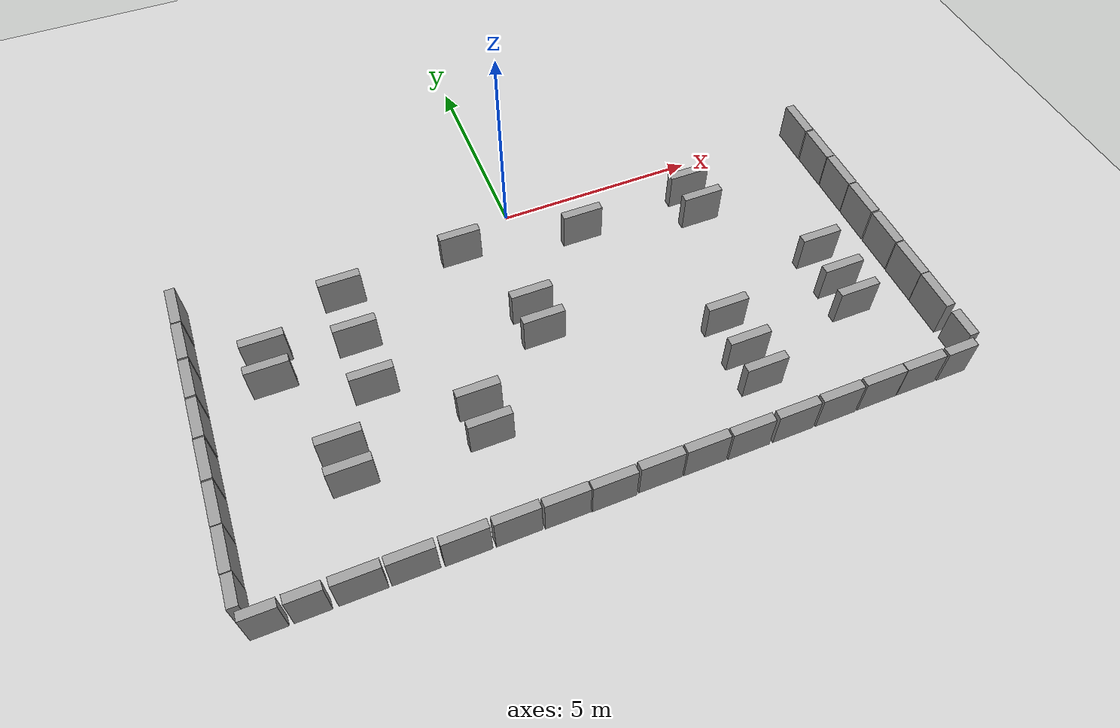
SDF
<sdf version="1.6">
 <world name="default">
  <model name="ground_plane">
   <static>1</static>
   <static>1</static>
   <link name="link">
    <collision name="collision">
     <geometry><plane><normal>0 0 1</normal><size>100 100</size></plane></geometry>
     <surface><friction><ode><mu>100</mu><mu2>50</mu2></ode></friction></surface>
    </collision>
    <visual name="visual">
     <cast_shadows>0</cast_shadows>
     <geometry><plane><normal>0 0 1</normal><size>100 100</size></plane></geometry>
     <material>
      <script><uri>file://media/materials/scripts/gazebo.material</uri><name>Gazebo/Grey</name></script>
     </material>
    </visual>
   </link>
  </model>
  <model name="unit_box_0_clone_7">
   <pose>8.11276 -0.449321 0.5 1e-06 1e-06 0.000231</pose>
   <link name="link">
    <inertial>
     <mass>1</mass>
     <inertia>
      <ixx>0.166667</ixx>
      <ixy>0</ixy>
      <ixz>0</ixz>
      <iyy>0.166667</iyy>
      <iyz>0</iyz>
      <izz>0.166667</izz>
     </inertia>
    </inertial>
    <collision name="collision"><geometry><box><size>0.230819 1 1</size></box></geometry></collision>
    <visual name="visual">
     <geometry><box><size>0.230819 1 1</size></box></geometry>
     <material>
      <script><name>Gazebo/Grey</name><uri>file://media/materials/scripts/gazebo.material</uri></script>
     </material>
    </visual>
   </link>
  </model>
  <model name="unit_box_0_clone_8">
   <pose>8.11912 -1.4863 0.5 1e-06 1e-06 0.000231</pose>
   <link name="link">
    <inertial>
     <mass>1</mass>
     <inertia>
      <ixx>0.166667</ixx>
      <ixy>0</ixy>
      <ixz>0</ixz>
      <iyy>0.166667</iyy>
      <iyz>0</iyz>
      <izz>0.166667</izz>
     </inertia>
    </inertial>
    <collision name="collision"><geometry><box><size>0.230819 1 1</size></box></geometry></collision>
    <visual name="visual">
     <geometry><box><size>0.230819 1 1</size></box></geometry>
     <material>
      <script><name>Gazebo/Grey</name><uri>file://media/materials/scripts/gazebo.material</uri></script>
     </material>
    </visual>
   </link>
  </model>
  <model name="unit_box_0_clone_9">
   <pose>8.12548 -2.5042 0.5 1e-06 1e-06 0.000231</pose>
   <link name="link">
    <inertial>
     <mass>1</mass>
     <inertia>
      <ixx>0.166667</ixx>
      <ixy>0</ixy>
      <ixz>0</ixz>
      <iyy>0.166667</iyy>
      <iyz>0</iyz>
      <izz>0.166667</izz>
     </inertia>
    </inertial>
    <collision name="collision"><geometry><box><size>0.230819 1 1</size></box></geometry></collision>
    <visual name="visual">
     <geometry><box><size>0.230819 1 1</size></box></geometry>
     <material>
      <script><name>Gazebo/Grey</name><uri>file://media/materials/scripts/gazebo.material</uri></script>
     </material>
    </visual>
   </link>
  </model>
  <model name="unit_box_0_clone_10">
   <pose>8.12331 -3.52223 0.5 1e-06 1e-06 0.000231</pose>
   <link name="link">
    <inertial>
     <mass>1</mass>
     <inertia>
      <ixx>0.166667</ixx>
      <ixy>0</ixy>
      <ixz>0</ixz>
      <iyy>0.166667</iyy>
      <iyz>0</iyz>
      <izz>0.166667</izz>
     </inertia>
    </inertial>
    <collision name="collision"><geometry><box><size>0.230819 1 1</size></box></geometry></collision>
    <visual name="visual">
     <geometry><box><size>0.230819 1 1</size></box></geometry>
     <material>
      <script><name>Gazebo/Grey</name><uri>file://media/materials/scripts/gazebo.material</uri></script>
     </material>
    </visual>
   </link>
  </model>
  <model name="unit_box_0_clone_11">
   <pose>8.1233 -4.56316 0.5 1e-06 1e-06 0.000231</pose>
   <link name="link">
    <inertial>
     <mass>1</mass>
     <inertia>
      <ixx>0.166667</ixx>
      <ixy>0</ixy>
      <ixz>0</ixz>
      <iyy>0.166667</iyy>
      <iyz>0</iyz>
      <izz>0.166667</izz>
     </inertia>
    </inertial>
    <collision name="collision"><geometry><box><size>0.230819 1 1</size></box></geometry></collision>
    <visual name="visual">
     <geometry><box><size>0.230819 1 1</size></box></geometry>
     <material>
      <script><name>Gazebo/Grey</name><uri>file://media/materials/scripts/gazebo.material</uri></script>
     </material>
    </visual>
   </link>
  </model>
  <model name="unit_box_0_clone_12">
   <pose>8.11815 -5.59377 0.5 1e-06 1e-06 0.000231</pose>
   <link name="link">
    <inertial>
     <mass>1</mass>
     <inertia>
      <ixx>0.166667</ixx>
      <ixy>0</ixy>
      <ixz>0</ixz>
      <iyy>0.166667</iyy>
      <iyz>0</iyz>
      <izz>0.166667</izz>
     </inertia>
    </inertial>
    <collision name="collision"><geometry><box><size>0.230819 1 1</size></box></geometry></collision>
    <visual name="visual">
     <geometry><box><size>0.230819 1 1</size></box></geometry>
     <material>
      <script><name>Gazebo/Grey</name><uri>file://media/materials/scripts/gazebo.material</uri></script>
     </material>
    </visual>
   </link>
  </model>
  <model name="unit_box_0_clone_13">
   <pose>8.11333 -6.60776 0.5 1e-06 1e-06 -0.005436</pose>
   <link name="link">
    <inertial>
     <mass>1</mass>
     <inertia>
      <ixx>0.166667</ixx>
      <ixy>0</ixy>
      <ixz>0</ixz>
      <iyy>0.166667</iyy>
      <iyz>0</iyz>
      <izz>0.166667</izz>
     </inertia>
    </inertial>
    <collision name="collision"><geometry><box><size>0.230819 1 1</size></box></geometry></collision>
    <visual name="visual">
     <geometry><box><size>0.230819 1 1</size></box></geometry>
     <material>
      <script><name>Gazebo/Grey</name><uri>file://media/materials/scripts/gazebo.material</uri></script>
     </material>
    </visual>
   </link>
  </model>
  <model name="unit_box_clone_15_clone_0">
   <pose>6.71207 -8.13093 0.499999 1e-06 -2e-06 0.000156</pose>
   <link name="link">
    <inertial>
     <mass>1</mass>
     <inertia>
      <ixx>0.166667</ixx>
      <ixy>0</ixy>
      <ixz>0</ixz>
      <iyy>0.166667</iyy>
      <iyz>0</iyz>
      <izz>0.166667</izz>
     </inertia>
    </inertial>
    <collision name="collision"><geometry><box><size>1 0.210541 1</size></box></geometry></collision>
    <visual name="visual">
     <geometry><box><size>1 0.210541 1</size></box></geometry>
     <material>
      <script><name>Gazebo/Grey</name><uri>file://media/materials/scripts/gazebo.material</uri></script>
     </material>
    </visual>
   </link>
  </model>
  <model name="unit_box_clone_15_clone_1">
   <pose>5.69715 -8.13092 0.499999 1e-06 -2e-06 0.000156</pose>
   <link name="link">
    <inertial>
     <mass>1</mass>
     <inertia>
      <ixx>0.166667</ixx>
      <ixy>0</ixy>
      <ixz>0</ixz>
      <iyy>0.166667</iyy>
      <iyz>0</iyz>
      <izz>0.166667</izz>
     </inertia>
    </inertial>
    <collision name="collision"><geometry><box><size>1 0.210541 1</size></box></geometry></collision>
    <visual name="visual">
     <geometry><box><size>1 0.210541 1</size></box></geometry>
     <material>
      <script><name>Gazebo/Grey</name><uri>file://media/materials/scripts/gazebo.material</uri></script>
     </material>
    </visual>
   </link>
  </model>
  <model name="unit_box_clone_15_clone_2">
   <pose>4.63881 -8.1371 0.499999 1e-06 -2e-06 0.000156</pose>
   <link name="link">
    <inertial>
     <mass>1</mass>
     <inertia>
      <ixx>0.166667</ixx>
      <ixy>0</ixy>
      <ixz>0</ixz>
      <iyy>0.166667</iyy>
      <iyz>0</iyz>
      <izz>0.166667</izz>
     </inertia>
    </inertial>
    <collision name="collision"><geometry><box><size>1 0.210541 1</size></box></geometry></collision>
    <visual name="visual">
     <geometry><box><size>1 0.210541 1</size></box></geometry>
     <material>
      <script><name>Gazebo/Grey</name><uri>file://media/materials/scripts/gazebo.material</uri></script>
     </material>
    </visual>
   </link>
  </model>
  <model name="unit_box_clone_15_clone_3">
   <pose>3.57975 -8.1371 0.499999 1e-06 -2e-06 0.000156</pose>
   <link name="link">
    <inertial>
     <mass>1</mass>
     <inertia>
      <ixx>0.166667</ixx>
      <ixy>0</ixy>
      <ixz>0</ixz>
      <iyy>0.166667</iyy>
      <iyz>0</iyz>
      <izz>0.166667</izz>
     </inertia>
    </inertial>
    <collision name="collision"><geometry><box><size>1 0.210541 1</size></box></geometry></collision>
    <visual name="visual">
     <geometry><box><size>1 0.210541 1</size></box></geometry>
     <material>
      <script><name>Gazebo/Grey</name><uri>file://media/materials/scripts/gazebo.material</uri></script>
     </material>
    </visual>
   </link>
  </model>
  <model name="unit_box_clone_15_clone_4">
   <pose>2.49815 -8.13709 0.499999 1e-06 -2e-06 0.000156</pose>
   <link name="link">
    <inertial>
     <mass>1</mass>
     <inertia>
      <ixx>0.166667</ixx>
      <ixy>0</ixy>
      <ixz>0</ixz>
      <iyy>0.166667</iyy>
      <iyz>0</iyz>
      <izz>0.166667</izz>
     </inertia>
    </inertial>
    <collision name="collision"><geometry><box><size>1 0.210541 1</size></box></geometry></collision>
    <visual name="visual">
     <geometry><box><size>1 0.210541 1</size></box></geometry>
     <material>
      <script><name>Gazebo/Grey</name><uri>file://media/materials/scripts/gazebo.material</uri></script>
     </material>
    </visual>
   </link>
  </model>
  <model name="unit_box_clone_15_clone_5">
   <pose>1.46162 -8.12582 0.499999 1e-06 -2e-06 0.000156</pose>
   <link name="link">
    <inertial>
     <mass>1</mass>
     <inertia>
      <ixx>0.166667</ixx>
      <ixy>0</ixy>
      <ixz>0</ixz>
      <iyy>0.166667</iyy>
      <iyz>0</iyz>
      <izz>0.166667</izz>
     </inertia>
    </inertial>
    <collision name="collision"><geometry><box><size>1 0.210541 1</size></box></geometry></collision>
    <visual name="visual">
     <geometry><box><size>1 0.210541 1</size></box></geometry>
     <material>
      <script><name>Gazebo/Grey</name><uri>file://media/materials/scripts/gazebo.material</uri></script>
     </material>
    </visual>
   </link>
  </model>
  <model name="unit_box_clone_15_clone_6">
   <pose>0.425087 -8.12581 0.499999 1e-06 -2e-06 0.000156</pose>
   <link name="link">
    <inertial>
     <mass>1</mass>
     <inertia>
      <ixx>0.166667</ixx>
      <ixy>0</ixy>
      <ixz>0</ixz>
      <iyy>0.166667</iyy>
      <iyz>0</iyz>
      <izz>0.166667</izz>
     </inertia>
    </inertial>
    <collision name="collision"><geometry><box><size>1 0.210541 1</size></box></geometry></collision>
    <visual name="visual">
     <geometry><box><size>1 0.210541 1</size></box></geometry>
     <material>
      <script><name>Gazebo/Grey</name><uri>file://media/materials/scripts/gazebo.material</uri></script>
     </material>
    </visual>
   </link>
  </model>
  <model name="unit_box_clone_15_clone_7">
   <pose>-0.633975 -8.14836 0.499999 1e-06 -2e-06 0.000156</pose>
   <link name="link">
    <inertial>
     <mass>1</mass>
     <inertia>
      <ixx>0.166667</ixx>
      <ixy>0</ixy>
      <ixz>0</ixz>
      <iyy>0.166667</iyy>
      <iyz>0</iyz>
      <izz>0.166667</izz>
     </inertia>
    </inertial>
    <collision name="collision"><geometry><box><size>1 0.210541 1</size></box></geometry></collision>
    <visual name="visual">
     <geometry><box><size>1 0.210541 1</size></box></geometry>
     <material>
      <script><name>Gazebo/Grey</name><uri>file://media/materials/scripts/gazebo.material</uri></script>
     </material>
    </visual>
   </link>
  </model>
  <model name="unit_box_clone_15_clone_8">
   <pose>-1.65923 -8.13708 0.499999 1e-06 -2e-06 0.000156</pose>
   <link name="link">
    <inertial>
     <mass>1</mass>
     <inertia>
      <ixx>0.166667</ixx>
      <ixy>0</ixy>
      <ixz>0</ixz>
      <iyy>0.166667</iyy>
      <iyz>0</iyz>
      <izz>0.166667</izz>
     </inertia>
    </inertial>
    <collision name="collision"><geometry><box><size>1 0.210541 1</size></box></geometry></collision>
    <visual name="visual">
     <geometry><box><size>1 0.210541 1</size></box></geometry>
     <material>
      <script><name>Gazebo/Grey</name><uri>file://media/materials/scripts/gazebo.material</uri></script>
     </material>
    </visual>
   </link>
  </model>
  <model name="unit_box_clone_15_clone_9">
   <pose>-2.70703 -8.12583 0.499999 1e-06 -2e-06 0.000156</pose>
   <link name="link">
    <inertial>
     <mass>1</mass>
     <inertia>
      <ixx>0.166667</ixx>
      <ixy>0</ixy>
      <ixz>0</ixz>
      <iyy>0.166667</iyy>
      <iyz>0</iyz>
      <izz>0.166667</izz>
     </inertia>
    </inertial>
    <collision name="collision"><geometry><box><size>1 0.210541 1</size></box></geometry></collision>
    <visual name="visual">
     <geometry><box><size>1 0.210541 1</size></box></geometry>
     <material>
      <script><name>Gazebo/Grey</name><uri>file://media/materials/scripts/gazebo.material</uri></script>
     </material>
    </visual>
   </link>
  </model>
  <model name="unit_box_clone_15_clone_10">
   <pose>-3.77736 -8.12582 0.499999 1e-06 -2e-06 0.000156</pose>
   <link name="link">
    <inertial>
     <mass>1</mass>
     <inertia>
      <ixx>0.166667</ixx>
      <ixy>0</ixy>
      <ixz>0</ixz>
      <iyy>0.166667</iyy>
      <iyz>0</iyz>
      <izz>0.166667</izz>
     </inertia>
    </inertial>
    <collision name="collision"><geometry><box><size>1 0.210541 1</size></box></geometry></collision>
    <visual name="visual">
     <geometry><box><size>1 0.210541 1</size></box></geometry>
     <material>
      <script><name>Gazebo/Grey</name><uri>file://media/materials/scripts/gazebo.material</uri></script>
     </material>
    </visual>
   </link>
  </model>
  <model name="unit_box_clone_15_clone_11">
   <pose>-4.85896 -8.11456 0.499999 1e-06 -2e-06 0.000156</pose>
   <link name="link">
    <inertial>
     <mass>1</mass>
     <inertia>
      <ixx>0.166667</ixx>
      <ixy>0</ixy>
      <ixz>0</ixz>
      <iyy>0.166667</iyy>
      <iyz>0</iyz>
      <izz>0.166667</izz>
     </inertia>
    </inertial>
    <collision name="collision"><geometry><box><size>1 0.210541 1</size></box></geometry></collision>
    <visual name="visual">
     <geometry><box><size>1 0.210541 1</size></box></geometry>
     <material>
      <script><name>Gazebo/Grey</name><uri>file://media/materials/scripts/gazebo.material</uri></script>
     </material>
    </visual>
   </link>
  </model>
  <model name="unit_box_clone_15_clone_12">
   <pose>-5.91802 -8.11455 0.499999 1e-06 -2e-06 0.000156</pose>
   <link name="link">
    <inertial>
     <mass>1</mass>
     <inertia>
      <ixx>0.166667</ixx>
      <ixy>0</ixy>
      <ixz>0</ixz>
      <iyy>0.166667</iyy>
      <iyz>0</iyz>
      <izz>0.166667</izz>
     </inertia>
    </inertial>
    <collision name="collision"><geometry><box><size>1 0.210541 1</size></box></geometry></collision>
    <visual name="visual">
     <geometry><box><size>1 0.210541 1</size></box></geometry>
     <material>
      <script><name>Gazebo/Grey</name><uri>file://media/materials/scripts/gazebo.material</uri></script>
     </material>
    </visual>
   </link>
  </model>
  <model name="unit_box_0_clone_4_clone_7">
   <pose>-8.12609 -0.518035 0.5 1e-06 1e-06 0.000231</pose>
   <link name="link">
    <inertial>
     <mass>1</mass>
     <inertia>
      <ixx>0.166667</ixx>
      <ixy>0</ixy>
      <ixz>0</ixz>
      <iyy>0.166667</iyy>
      <iyz>0</iyz>
      <izz>0.166667</izz>
     </inertia>
    </inertial>
    <collision name="collision"><geometry><box><size>0.230819 1 1</size></box></geometry></collision>
    <visual name="visual">
     <geometry><box><size>0.230819 1 1</size></box></geometry>
     <material>
      <script><name>Gazebo/Grey</name><uri>file://media/materials/scripts/gazebo.material</uri></script>
     </material>
    </visual>
   </link>
  </model>
  <model name="unit_box_0_clone_4_clone_8">
   <pose>-8.13284 -1.54445 0.5 1e-06 1e-06 0.000231</pose>
   <link name="link">
    <inertial>
     <mass>1</mass>
     <inertia>
      <ixx>0.166667</ixx>
      <ixy>0</ixy>
      <ixz>0</ixz>
      <iyy>0.166667</iyy>
      <iyz>0</iyz>
      <izz>0.166667</izz>
     </inertia>
    </inertial>
    <collision name="collision"><geometry><box><size>0.230819 1 1</size></box></geometry></collision>
    <visual name="visual">
     <geometry><box><size>0.230819 1 1</size></box></geometry>
     <material>
      <script><name>Gazebo/Grey</name><uri>file://media/materials/scripts/gazebo.material</uri></script>
     </material>
    </visual>
   </link>
  </model>
  <model name="unit_box_0_clone_4_clone_9">
   <pose>-8.13285 -2.58438 0.5 1e-06 1e-06 0.000231</pose>
   <link name="link">
    <inertial>
     <mass>1</mass>
     <inertia>
      <ixx>0.166667</ixx>
      <ixy>0</ixy>
      <ixz>0</ixz>
      <iyy>0.166667</iyy>
      <iyz>0</iyz>
      <izz>0.166667</izz>
     </inertia>
    </inertial>
    <collision name="collision"><geometry><box><size>0.230819 1 1</size></box></geometry></collision>
    <visual name="visual">
     <geometry><box><size>0.230819 1 1</size></box></geometry>
     <material>
      <script><name>Gazebo/Grey</name><uri>file://media/materials/scripts/gazebo.material</uri></script>
     </material>
    </visual>
   </link>
  </model>
  <model name="unit_box_0_clone_4_clone_10">
   <pose>-8.13285 -3.6243 0.5 1e-06 1e-06 0.000231</pose>
   <link name="link">
    <inertial>
     <mass>1</mass>
     <inertia>
      <ixx>0.166667</ixx>
      <ixy>0</ixy>
      <ixz>0</ixz>
      <iyy>0.166667</iyy>
      <iyz>0</iyz>
      <izz>0.166667</izz>
     </inertia>
    </inertial>
    <collision name="collision"><geometry><box><size>0.230819 1 1</size></box></geometry></collision>
    <visual name="visual">
     <geometry><box><size>0.230819 1 1</size></box></geometry>
     <material>
      <script><name>Gazebo/Grey</name><uri>file://media/materials/scripts/gazebo.material</uri></script>
     </material>
    </visual>
   </link>
  </model>
  <model name="unit_box_0_clone_4_clone_11">
   <pose>-8.1396 -4.65747 0.5 1e-06 1e-06 0.000231</pose>
   <link name="link">
    <inertial>
     <mass>1</mass>
     <inertia>
      <ixx>0.166667</ixx>
      <ixy>0</ixy>
      <ixz>0</ixz>
      <iyy>0.166667</iyy>
      <iyz>0</iyz>
      <izz>0.166667</izz>
     </inertia>
    </inertial>
    <collision name="collision"><geometry><box><size>0.230819 1 1</size></box></geometry></collision>
    <visual name="visual">
     <geometry><box><size>0.230819 1 1</size></box></geometry>
     <material>
      <script><name>Gazebo/Grey</name><uri>file://media/materials/scripts/gazebo.material</uri></script>
     </material>
    </visual>
   </link>
  </model>
  <model name="unit_box_0_clone_4_clone_12">
   <pose>-8.1396 -5.69064 0.5 1e-06 1e-06 0.000231</pose>
   <link name="link">
    <inertial>
     <mass>1</mass>
     <inertia>
      <ixx>0.166667</ixx>
      <ixy>0</ixy>
      <ixz>0</ixz>
      <iyy>0.166667</iyy>
      <iyz>0</iyz>
      <izz>0.166667</izz>
     </inertia>
    </inertial>
    <collision name="collision"><geometry><box><size>0.230819 1 1</size></box></geometry></collision>
    <visual name="visual">
     <geometry><box><size>0.230819 1 1</size></box></geometry>
     <material>
      <script><name>Gazebo/Grey</name><uri>file://media/materials/scripts/gazebo.material</uri></script>
     </material>
    </visual>
   </link>
  </model>
  <model name="unit_box_0_clone_4_clone_13">
   <pose>-8.14113 -6.70872 0.5 0 0 -0.0092</pose>
   <link name="link">
    <inertial>
     <mass>1</mass>
     <inertia>
      <ixx>0.166667</ixx>
      <ixy>0</ixy>
      <ixz>0</ixz>
      <iyy>0.166667</iyy>
      <iyz>0</iyz>
      <izz>0.166667</izz>
     </inertia>
    </inertial>
    <collision name="collision"><geometry><box><size>0.230819 1 1</size></box></geometry></collision>
    <visual name="visual">
     <geometry><box><size>0.230819 1 1</size></box></geometry>
     <material>
      <script><name>Gazebo/Grey</name><uri>file://media/materials/scripts/gazebo.material</uri></script>
     </material>
    </visual>
   </link>
  </model>
  <model name="unit_box_clone_11_clone_1_clone_0">
   <pose>-6.90881 -8.11956 0.499997 -2e-06 -7e-06 -0.000734</pose>
   <link name="link">
    <inertial>
     <mass>1</mass>
     <inertia>
      <ixx>0.166667</ixx>
      <ixy>0</ixy>
      <ixz>0</ixz>
      <iyy>0.166667</iyy>
      <iyz>0</iyz>
      <izz>0.166667</izz>
     </inertia>
    </inertial>
    <collision name="collision"><geometry><box><size>0.750223 0.210541 1</size></box></geometry></collision>
    <visual name="visual">
     <geometry><box><size>0.750223 0.210541 1</size></box></geometry>
     <material>
      <script><name>Gazebo/Grey</name><uri>file://media/materials/scripts/gazebo.material</uri></script>
     </material>
    </visual>
   </link>
  </model>
  <model name="unit_box_0_clone_4_clone_13_clone_clone">
   <pose>-8.13833 -7.5766 0.499997 7e-06 3e-06 -0.012265</pose>
   <link name="link">
    <inertial>
     <mass>1</mass>
     <inertia>
      <ixx>0.166667</ixx>
      <ixy>0</ixy>
      <ixz>0</ixz>
      <iyy>0.166667</iyy>
      <iyz>0</iyz>
      <izz>0.166667</izz>
     </inertia>
    </inertial>
    <collision name="collision"><geometry><box><size>0.230819 0.700336 1</size></box></geometry></collision>
    <visual name="visual">
     <geometry><box><size>0.230819 0.700336 1</size></box></geometry>
     <material>
      <script><name>Gazebo/Grey</name><uri>file://media/materials/scripts/gazebo.material</uri></script>
     </material>
    </visual>
   </link>
  </model>
  <model name="unit_box_clone_11_clone_1_clone_0_clone">
   <pose>-7.75475 -8.12201 0.499997 1e-06 -8e-06 -0.004369</pose>
   <link name="link">
    <inertial>
     <mass>1</mass>
     <inertia>
      <ixx>0.166667</ixx>
      <ixy>0</ixy>
      <ixz>0</ixz>
      <iyy>0.166667</iyy>
      <iyz>0</iyz>
      <izz>0.166667</izz>
     </inertia>
    </inertial>
    <collision name="collision"><geometry><box><size>0.750223 0.210541 1</size></box></geometry></collision>
    <visual name="visual">
     <geometry><box><size>0.750223 0.210541 1</size></box></geometry>
     <material>
      <script><name>Gazebo/Grey</name><uri>file://media/materials/scripts/gazebo.material</uri></script>
     </material>
    </visual>
   </link>
  </model>
  <model name="unit_box_clone_11_clone_1_clone_2">
   <pose>7.64248 -8.13928 0.499997 3e-06 -7e-06 0.002751</pose>
   <link name="link">
    <inertial>
     <mass>1</mass>
     <inertia>
      <ixx>0.166667</ixx>
      <ixy>0</ixy>
      <ixz>0</ixz>
      <iyy>0.166667</iyy>
      <iyz>0</iyz>
      <izz>0.166667</izz>
     </inertia>
    </inertial>
    <collision name="collision"><geometry><box><size>0.750223 0.210541 1</size></box></geometry></collision>
    <visual name="visual">
     <geometry><box><size>0.750223 0.210541 1</size></box></geometry>
     <material>
      <script><name>Gazebo/Grey</name><uri>file://media/materials/scripts/gazebo.material</uri></script>
     </material>
    </visual>
   </link>
  </model>
  <model name="unit_box_0_clone_4_clone_13_clone_clone_clone">
   <pose>8.11858 -7.62155 0.499997 -7e-06 2e-06 -0.005482</pose>
   <link name="link">
    <inertial>
     <mass>1</mass>
     <inertia>
      <ixx>0.166667</ixx>
      <ixy>0</ixy>
      <ixz>0</ixz>
      <iyy>0.166667</iyy>
      <iyz>0</iyz>
      <izz>0.166667</izz>
     </inertia>
    </inertial>
    <collision name="collision"><geometry><box><size>0.230819 0.700336 1</size></box></geometry></collision>
    <visual name="visual">
     <geometry><box><size>0.230819 0.700336 1</size></box></geometry>
     <material>
      <script><name>Gazebo/Grey</name><uri>file://media/materials/scripts/gazebo.material</uri></script>
     </material>
    </visual>
   </link>
  </model>
  <model name="unit_box_clone_1_clone_12">
   <pose>1.51802 -1.3211 0.5 -0 -0 -0.002276</pose>
   <link name="link">
    <inertial>
     <mass>1</mass>
     <inertia>
      <ixx>0.166667</ixx>
      <ixy>0</ixy>
      <ixz>0</ixz>
      <iyy>0.166667</iyy>
      <iyz>0</iyz>
      <izz>0.166667</izz>
     </inertia>
    </inertial>
    <collision name="collision"><geometry><box><size>1 0.210541 1</size></box></geometry></collision>
    <visual name="visual">
     <geometry><box><size>1 0.210541 1</size></box></geometry>
     <material>
      <script><name>Gazebo/Grey</name><uri>file://media/materials/scripts/gazebo.material</uri></script>
     </material>
    </visual>
   </link>
  </model>
  <model name="unit_box_clone_1_clone_15">
   <pose>-1.47581 -0.861477 0.499999 -1e-06 -2e-06 -0.002337</pose>
   <link name="link">
    <inertial>
     <mass>1</mass>
     <inertia>
      <ixx>0.166667</ixx>
      <ixy>0</ixy>
      <ixz>0</ixz>
      <iyy>0.166667</iyy>
      <iyz>0</iyz>
      <izz>0.166667</izz>
     </inertia>
    </inertial>
    <collision name="collision"><geometry><box><size>1 0.210541 1</size></box></geometry></collision>
    <visual name="visual">
     <geometry><box><size>1 0.210541 1</size></box></geometry>
     <material>
      <script><name>Gazebo/Grey</name><uri>file://media/materials/scripts/gazebo.material</uri></script>
     </material>
    </visual>
   </link>
  </model>
  <model name="unit_box_clone_1_clone_16">
   <pose>-4.47907 -1.13331 0.5 -0 -0 -0.00233</pose>
   <link name="link">
    <inertial>
     <mass>1</mass>
     <inertia>
      <ixx>0.166667</ixx>
      <ixy>0</ixy>
      <ixz>0</ixz>
      <iyy>0.166667</iyy>
      <iyz>0</iyz>
      <izz>0.166667</izz>
     </inertia>
    </inertial>
    <collision name="collision"><geometry><box><size>1 0.210541 1</size></box></geometry></collision>
    <visual name="visual">
     <geometry><box><size>1 0.210541 1</size></box></geometry>
     <material>
      <script><name>Gazebo/Grey</name><uri>file://media/materials/scripts/gazebo.material</uri></script>
     </material>
    </visual>
   </link>
  </model>
  <model name="unit_box_clone_1_clone_17">
   <pose>-4.46516 -3.87534 0.499999 1e-06 2e-06 -0.00235</pose>
   <link name="link">
    <inertial>
     <mass>1</mass>
     <inertia>
      <ixx>0.166667</ixx>
      <ixy>0</ixy>
      <ixz>0</ixz>
      <iyy>0.166667</iyy>
      <iyz>0</iyz>
      <izz>0.166667</izz>
     </inertia>
    </inertial>
    <collision name="collision"><geometry><box><size>1 0.210541 1</size></box></geometry></collision>
    <visual name="visual">
     <geometry><box><size>1 0.210541 1</size></box></geometry>
     <material>
      <script><name>Gazebo/Grey</name><uri>file://media/materials/scripts/gazebo.material</uri></script>
     </material>
    </visual>
   </link>
  </model>
  <model name="unit_box_clone_1_clone_18">
   <pose>-4.47908 -2.5113 0.499999 1e-06 -2e-06 -0.002249</pose>
   <link name="link">
    <inertial>
     <mass>1</mass>
     <inertia>
      <ixx>0.166667</ixx>
      <ixy>0</ixy>
      <ixz>0</ixz>
      <iyy>0.166667</iyy>
      <iyz>0</iyz>
      <izz>0.166667</izz>
     </inertia>
    </inertial>
    <collision name="collision"><geometry><box><size>1 0.210541 1</size></box></geometry></collision>
    <visual name="visual">
     <geometry><box><size>1 0.210541 1</size></box></geometry>
     <material>
      <script><name>Gazebo/Grey</name><uri>file://media/materials/scripts/gazebo.material</uri></script>
     </material>
    </visual>
   </link>
  </model>
  <model name="unit_box_clone_1_clone_19">
   <pose>-6.46946 -2.13569 0.499999 -1e-06 2e-06 -0.002263</pose>
   <link name="link">
    <inertial>
     <mass>1</mass>
     <inertia>
      <ixx>0.166667</ixx>
      <ixy>0</ixy>
      <ixz>0</ixz>
      <iyy>0.166667</iyy>
      <iyz>0</iyz>
      <izz>0.166667</izz>
     </inertia>
    </inertial>
    <collision name="collision"><geometry><box><size>1 0.210541 1</size></box></geometry></collision>
    <visual name="visual">
     <geometry><box><size>1 0.210541 1</size></box></geometry>
     <material>
      <script><name>Gazebo/Grey</name><uri>file://media/materials/scripts/gazebo.material</uri></script>
     </material>
    </visual>
   </link>
  </model>
  <model name="unit_box_clone_1_clone_20">
   <pose>-6.51122 -2.87319 0.499999 1e-06 2e-06 -0.002406</pose>
   <link name="link">
    <inertial>
     <mass>1</mass>
     <inertia>
      <ixx>0.166667</ixx>
      <ixy>0</ixy>
      <ixz>0</ixz>
      <iyy>0.166667</iyy>
      <iyz>0</iyz>
      <izz>0.166667</izz>
     </inertia>
    </inertial>
    <collision name="collision"><geometry><box><size>1 0.210541 1</size></box></geometry></collision>
    <visual name="visual">
     <geometry><box><size>1 0.210541 1</size></box></geometry>
     <material>
      <script><name>Gazebo/Grey</name><uri>file://media/materials/scripts/gazebo.material</uri></script>
     </material>
    </visual>
   </link>
  </model>
  <model name="unit_box_clone_1_clone_21">
   <pose>-5.49516 -5.12825 0.5 0 0 -0.002252</pose>
   <link name="link">
    <inertial>
     <mass>1</mass>
     <inertia>
      <ixx>0.166667</ixx>
      <ixy>0</ixy>
      <ixz>0</ixz>
      <iyy>0.166667</iyy>
      <iyz>0</iyz>
      <izz>0.166667</izz>
     </inertia>
    </inertial>
    <collision name="collision"><geometry><box><size>1 0.210541 1</size></box></geometry></collision>
    <visual name="visual">
     <geometry><box><size>1 0.210541 1</size></box></geometry>
     <material>
      <script><name>Gazebo/Grey</name><uri>file://media/materials/scripts/gazebo.material</uri></script>
     </material>
    </visual>
   </link>
  </model>
  <model name="unit_box_clone_1_clone_22">
   <pose>-5.46733 -5.86573 0.5 0 0 -0.002327</pose>
   <link name="link">
    <inertial>
     <mass>1</mass>
     <inertia>
      <ixx>0.166667</ixx>
      <ixy>0</ixy>
      <ixz>0</ixz>
      <iyy>0.166667</iyy>
      <iyz>0</iyz>
      <izz>0.166667</izz>
     </inertia>
    </inertial>
    <collision name="collision"><geometry><box><size>1 0.210541 1</size></box></geometry></collision>
    <visual name="visual">
     <geometry><box><size>1 0.210541 1</size></box></geometry>
     <material>
      <script><name>Gazebo/Grey</name><uri>file://media/materials/scripts/gazebo.material</uri></script>
     </material>
    </visual>
   </link>
  </model>
  <model name="unit_box_clone_1_clone_23">
   <pose>-2.47479 -5.12806 0.5 -0 -0 -0.002356</pose>
   <link name="link">
    <inertial>
     <mass>1</mass>
     <inertia>
      <ixx>0.166667</ixx>
      <ixy>0</ixy>
      <ixz>0</ixz>
      <iyy>0.166667</iyy>
      <iyz>0</iyz>
      <izz>0.166667</izz>
     </inertia>
    </inertial>
    <collision name="collision"><geometry><box><size>1 0.210541 1</size></box></geometry></collision>
    <visual name="visual">
     <geometry><box><size>1 0.210541 1</size></box></geometry>
     <material>
      <script><name>Gazebo/Grey</name><uri>file://media/materials/scripts/gazebo.material</uri></script>
     </material>
    </visual>
   </link>
  </model>
  <model name="unit_box_clone_1_clone_24">
   <pose>-2.48871 -5.92143 0.499999 1e-06 -2e-06 -0.002251</pose>
   <link name="link">
    <inertial>
     <mass>1</mass>
     <inertia>
      <ixx>0.166667</ixx>
      <ixy>0</ixy>
      <ixz>0</ixz>
      <iyy>0.166667</iyy>
      <iyz>0</iyz>
      <izz>0.166667</izz>
     </inertia>
    </inertial>
    <collision name="collision"><geometry><box><size>1 0.210541 1</size></box></geometry></collision>
    <visual name="visual">
     <geometry><box><size>1 0.210541 1</size></box></geometry>
     <material>
      <script><name>Gazebo/Grey</name><uri>file://media/materials/scripts/gazebo.material</uri></script>
     </material>
    </visual>
   </link>
  </model>
  <model name="unit_box_clone_1_clone_25">
   <pose>-0.490757 -3.10935 0.5 0 0 -0.002211</pose>
   <link name="link">
    <inertial>
     <mass>1</mass>
     <inertia>
      <ixx>0.166667</ixx>
      <ixy>0</ixy>
      <ixz>0</ixz>
      <iyy>0.166667</iyy>
      <iyz>0</iyz>
      <izz>0.166667</izz>
     </inertia>
    </inertial>
    <collision name="collision"><geometry><box><size>1 0.210541 1</size></box></geometry></collision>
    <visual name="visual">
     <geometry><box><size>1 0.210541 1</size></box></geometry>
     <material>
      <script><name>Gazebo/Grey</name><uri>file://media/materials/scripts/gazebo.material</uri></script>
     </material>
    </visual>
   </link>
  </model>
  <model name="unit_box_clone_1_clone_26">
   <pose>-0.490754 -3.8737 0.5 0 0 -0.002223</pose>
   <link name="link">
    <inertial>
     <mass>1</mass>
     <inertia>
      <ixx>0.166667</ixx>
      <ixy>0</ixy>
      <ixz>0</ixz>
      <iyy>0.166667</iyy>
      <iyz>0</iyz>
      <izz>0.166667</izz>
     </inertia>
    </inertial>
    <collision name="collision"><geometry><box><size>1 0.210541 1</size></box></geometry></collision>
    <visual name="visual">
     <geometry><box><size>1 0.210541 1</size></box></geometry>
     <material>
      <script><name>Gazebo/Grey</name><uri>file://media/materials/scripts/gazebo.material</uri></script>
     </material>
    </visual>
   </link>
  </model>
  <model name="unit_box_clone_1_clone_28">
   <pose>4.5142 -1.10357 0.5 -0 -0 -0.002285</pose>
   <link name="link">
    <inertial>
     <mass>1</mass>
     <inertia>
      <ixx>0.166667</ixx>
      <ixy>0</ixy>
      <ixz>0</ixz>
      <iyy>0.166667</iyy>
      <iyz>0</iyz>
      <izz>0.166667</izz>
     </inertia>
    </inertial>
    <collision name="collision"><geometry><box><size>1 0.210541 1</size></box></geometry></collision>
    <visual name="visual">
     <geometry><box><size>1 0.210541 1</size></box></geometry>
     <material>
      <script><name>Gazebo/Grey</name><uri>file://media/materials/scripts/gazebo.material</uri></script>
     </material>
    </visual>
   </link>
  </model>
  <model name="unit_box_clone_1_clone_29">
   <pose>4.50757 -1.88517 0.499999 -1e-06 2e-06 -0.002289</pose>
   <link name="link">
    <inertial>
     <mass>1</mass>
     <inertia>
      <ixx>0.166667</ixx>
      <ixy>0</ixy>
      <ixz>0</ixz>
      <iyy>0.166667</iyy>
      <iyz>0</iyz>
      <izz>0.166667</izz>
     </inertia>
    </inertial>
    <collision name="collision"><geometry><box><size>1 0.210541 1</size></box></geometry></collision>
    <visual name="visual">
     <geometry><box><size>1 0.210541 1</size></box></geometry>
     <material>
      <script><name>Gazebo/Grey</name><uri>file://media/materials/scripts/gazebo.material</uri></script>
     </material>
    </visual>
   </link>
  </model>
  <model name="unit_box_clone_1_clone_30">
   <pose>6.48118 -5.86589 0.499999 -1e-06 2e-06 -0.002234</pose>
   <link name="link">
    <inertial>
     <mass>1</mass>
     <inertia>
      <ixx>0.166667</ixx>
      <ixy>0</ixy>
      <ixz>0</ixz>
      <iyy>0.166667</iyy>
      <iyz>0</iyz>
      <izz>0.166667</izz>
     </inertia>
    </inertial>
    <collision name="collision"><geometry><box><size>1 0.210541 1</size></box></geometry></collision>
    <visual name="visual">
     <geometry><box><size>1 0.210541 1</size></box></geometry>
     <material>
      <script><name>Gazebo/Grey</name><uri>file://media/materials/scripts/gazebo.material</uri></script>
     </material>
    </visual>
   </link>
  </model>
  <model name="unit_box_clone_1_clone_31">
   <pose>6.51638 -5.13839 0.499999 1e-06 2e-06 -0.00236</pose>
   <link name="link">
    <inertial>
     <mass>1</mass>
     <inertia>
      <ixx>0.166667</ixx>
      <ixy>0</ixy>
      <ixz>0</ixz>
      <iyy>0.166667</iyy>
      <iyz>0</iyz>
      <izz>0.166667</izz>
     </inertia>
    </inertial>
    <collision name="collision"><geometry><box><size>1 0.210541 1</size></box></geometry></collision>
    <visual name="visual">
     <geometry><box><size>1 0.210541 1</size></box></geometry>
     <material>
      <script><name>Gazebo/Grey</name><uri>file://media/materials/scripts/gazebo.material</uri></script>
     </material>
    </visual>
   </link>
  </model>
  <model name="unit_box_clone_1_clone_32">
   <pose>6.51638 -4.1411 0.499999 1e-06 -2e-06 -0.002304</pose>
   <link name="link">
    <inertial>
     <mass>1</mass>
     <inertia>
      <ixx>0.166667</ixx>
      <ixy>0</ixy>
      <ixz>0</ixz>
      <iyy>0.166667</iyy>
      <iyz>0</iyz>
      <izz>0.166667</izz>
     </inertia>
    </inertial>
    <collision name="collision"><geometry><box><size>1 0.210541 1</size></box></geometry></collision>
    <visual name="visual">
     <geometry><box><size>1 0.210541 1</size></box></geometry>
     <material>
      <script><name>Gazebo/Grey</name><uri>file://media/materials/scripts/gazebo.material</uri></script>
     </material>
    </visual>
   </link>
  </model>
  <model name="unit_box_clone_1_clone_33">
   <pose>3.49882 -5.11599 0.499999 1e-06 -2e-06 -0.002245</pose>
   <link name="link">
    <inertial>
     <mass>1</mass>
     <inertia>
      <ixx>0.166667</ixx>
      <ixy>0</ixy>
      <ixz>0</ixz>
      <iyy>0.166667</iyy>
      <iyz>0</iyz>
      <izz>0.166667</izz>
     </inertia>
    </inertial>
    <collision name="collision"><geometry><box><size>1 0.210541 1</size></box></geometry></collision>
    <visual name="visual">
     <geometry><box><size>1 0.210541 1</size></box></geometry>
     <material>
      <script><name>Gazebo/Grey</name><uri>file://media/materials/scripts/gazebo.material</uri></script>
     </material>
    </visual>
   </link>
  </model>
  <model name="unit_box_clone_1_clone_34">
   <pose>3.51592 -6.1167 0.5 0 0 -0.002263</pose>
   <link name="link">
    <inertial>
     <mass>1</mass>
     <inertia>
      <ixx>0.166667</ixx>
      <ixy>0</ixy>
      <ixz>0</ixz>
      <iyy>0.166667</iyy>
      <iyz>0</iyz>
      <izz>0.166667</izz>
     </inertia>
    </inertial>
    <collision name="collision"><geometry><box><size>1 0.210541 1</size></box></geometry></collision>
    <visual name="visual">
     <geometry><box><size>1 0.210541 1</size></box></geometry>
     <material>
      <script><name>Gazebo/Grey</name><uri>file://media/materials/scripts/gazebo.material</uri></script>
     </material>
    </visual>
   </link>
  </model>
  <model name="unit_box_clone_1_clone_35">
   <pose>3.52447 -6.8694 0.499999 1e-06 2e-06 -0.002358</pose>
   <link name="link">
    <inertial>
     <mass>1</mass>
     <inertia>
      <ixx>0.166667</ixx>
      <ixy>0</ixy>
      <ixz>0</ixz>
      <iyy>0.166667</iyy>
      <iyz>0</iyz>
      <izz>0.166667</izz>
     </inertia>
    </inertial>
    <collision name="collision"><geometry><box><size>1 0.210541 1</size></box></geometry></collision>
    <visual name="visual">
     <geometry><box><size>1 0.210541 1</size></box></geometry>
     <material>
      <script><name>Gazebo/Grey</name><uri>file://media/materials/scripts/gazebo.material</uri></script>
     </material>
    </visual>
   </link>
  </model>
 </world>
</sdf>
